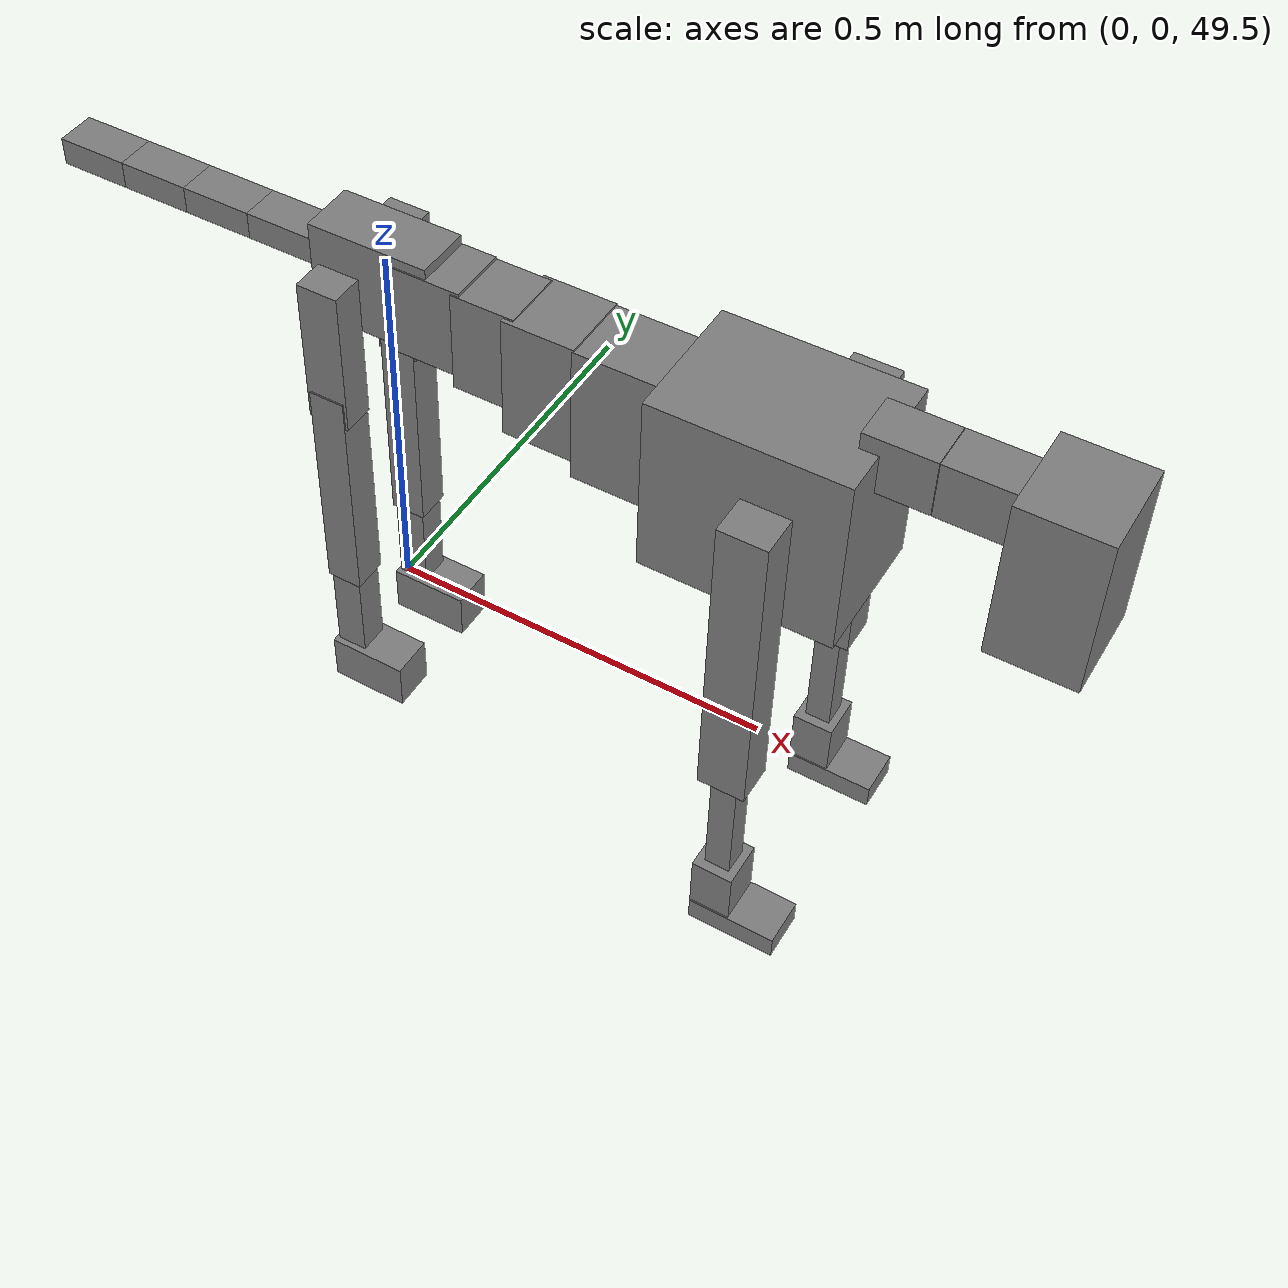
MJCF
<mujoco model="dog">

    <default>
        <joint armature="0.02" stiffness="1" damping="0.2" limited="true"/>
        <geom condim="3" friction="1 0.05 0.05" margin="0.01"/>
        <motor ctrllimited="true" ctrlrange="-1.0 1.0" forcelimited="true" gear="50"/>
    </default>

    <compiler inertiafromgeom="true" angle="radian"/>

    <option timestep="0.016" iterations="50" tolerance="1e-10" solver="Newton" jacobian="dense" cone="pyramidal"/>

    <size nconmax="20000" njmax="60000" nstack="5000000"/>
    <visual>
        <map force="0.1" zfar="30"/>
        <rgba haze="0.15 0.25 0.35 1"/>
        <quality shadowsize="2048"/>
        <global offwidth="800" offheight="800"/>
    </visual>

    <asset>
        <texture type="skybox" builtin="gradient" rgb1="0.3 0.5 0.7" rgb2="0 0 0" width="512" height="512"/>
        <texture name="texplane" type="2d" builtin="checker" rgb1=".2 .3 .4" rgb2=".1 0.15 0.2" width="512" height="512"
                 mark="cross" markrgb=".8 .8 .8"/>
        <texture name="texgeom" type="cube" builtin="flat" mark="cross" width="127" height="1278" rgb1="0.8 0.6 0.4"
                 rgb2="0.8 0.6 0.4" markrgb="1 1 1" random="0.01"/>

        <material name="matplane" reflectance="0.3" texture="texplane" texrepeat="1 1" texuniform="true"/>
        <material name="matgeom" texture="texgeom" texuniform="true" rgba="0.8 0.6 .4 1"/>
    </asset>

    <worldbody>
        <geom name="floor" pos="0 0 0" size="0 0 .25" type="plane" material="matplane" condim="3"/>

        <light directional="false" diffuse=".2 .2 .2" specular="0 0 0" pos="0 0 5" dir="0 0 -1" castshadow="false"/>
        <light mode="targetbodycom" target="torso" directional="false" diffuse=".8 .8 .8" specular="0.3 0.3 0.3"
               pos="0 0 4.0" dir="0 0 -1"/>

        <body name="root" pos="0 0 50">
            <freejoint name="root_1"/>
            <geom type="box" pos="0 0 -0.02" size="0.0774  0.0358  0.063" density="2030"/>

            <body name="spine1" pos="0.054 0 0">
                <joint name="spine1_y" axis="0 1 0" range="0 0.7" limited="true"/>
                <geom type="box" pos="0.02375 0 -0.03" size="0.04375  0.0375  0.05985" density="2030"/>

                <body name="spine2" pos="0.0612 0 0">
                    <joint name="spine2_y" axis="0 1 0" range="-0.15 0.15" limited="true"/>
                    <geom type="box" pos="0.03555  0  -0.04" size="0.04055  0.039  0.06615" density="2030"/>

                    <body name="spine3" pos="0.0730 0 0">
                        <joint name="spine3_y" axis="0 1 0" range="-0.15 0.15" limited="true"/>
                        <geom type="box" pos="0.03555  0  -0.057" size="0.04555  0.0445  0.081" density="2030"/>

                        <body name="spine4" pos="0.0780 0 0">
                            <joint name="spine4_y" axis="0 1 0" range="-0.15 0.15" limited="true"/>
                            <geom type="box" pos="0.05265  0  -0.07" size="0.05265  0.045  0.09135" density="2030"/>

                            <body name="torso" pos="0.1082 0 0">
                                <joint name="torso_y" axis="0 1 0" range="-0.15 0.15" limited="true"/>
                                <geom type="box" pos="0.11925  0  -0.085" size="0.11925  0.085  0.11745"
                                      density="2030"/>

                                <body name="neck1" pos="0.2160  0   0.0180">
                                    <joint name="neck1_y" axis="0 1 0" range="-1.2  -1" limited="true"/>
                                    <geom type="box" pos="0.0423  0  0" size="0.0423  0.03  0.036" density="2325"/>

                                    <body name="neck2" pos="0.0853  0  0">
                                        <joint name="neck2_y" axis="0 1 0" range="0.1  0" limited="true"/>
                                        <geom type="box" pos="0.0423  0  0" size="0.0423  0.03  0.036" density="2325"/>

                                        <body name="head" pos="0.0853  0  0">
                                            <joint name="head_y" axis="0 1 0" range="-0.3  -0.2" limited="true"/>
                                            <geom type="box" pos="0.0531  0  -0.055" size="0.0531  0.06  0.1044"
                                                  density="4030"/>

                                        </body>
                                    </body>
                                </body>

                                <body name="front_shoulder" pos="0.156  0   -0.0480">
                                    <joint name="front_shoulder_y" axis="0 1 0" range="-1 1.5" limited="true"/>
                                    <geom type="box" pos="0 0.13 -0.1752" size="0.0297  0.0254  0.2019" density="1158"/>
                                    <geom type="box" pos="0 -0.13 -0.1752" size="0.0297  0.0254  0.2019"
                                          density="1158"/>

                                    <body name="front_elbow" pos="0  0  -0.3504">
                                        <joint name="front_elbow_y" axis="0 1 0" range="-2 0" limited="true"/>
                                        <geom type="box" pos="0 0.13 -0.0971" size="0.0160  0.0164  0.0971"
                                              density="1081"/>
                                        <geom type="box" pos="0 -0.13 -0.0971" size="0.0160  0.0164  0.0971"
                                              density="1081"/>

                                        <body name="front_wrist" pos="0  0  -0.1941">
                                            <joint name="front_wrist_y" axis="0 1 0" range="-0.2 0" limited="true"/>
                                            <geom type="box" pos="0 0.13 -0.0368" size="0.0259  0.0288  0.0500"
                                                  density="1664"/>
                                            <geom type="box" pos="0 -0.13 -0.0368" size="0.0259  0.0288  0.0500"
                                                  density="1664"/>

                                            <body name="front_finger_end" pos="0  0  -0.0736">
                                                <joint name="front_finger_y" axis="0 1 0" range="-0.4 1"
                                                       limited="true"/>
                                                <geom type="box" pos="0.0305  0.13  -0.0004"
                                                      size="0.0558  0.0305  0.0154" density="1515"/>
                                                <geom type="box" pos="0.0305  -0.13  -0.0004"
                                                      size="0.0558  0.0305  0.0154" density="1515"/>

                                            </body>

                                        </body>
                                    </body>
                                </body>

                            </body>
                        </body>
                    </body>
                </body>
            </body>

            <body name="back_hip" pos="-0.03 0 -0.018">
                <joint name="back_hip_y" axis="0 1 0" range="-1.5 0.3" limited="true"/>
                <geom type="box" pos="0 0.07 -0.0738" size="0.0266  0.0209  0.0966" density="1154"/>
                <geom type="box" pos="0 -0.07 -0.0738" size="0.0266  0.0209  0.0966" density="1154"/>

                <body name="back_knee" pos="0  0  -0.1476">
                    <joint name="back_knee_y" axis="0 1 0" range="0 2.8" limited="true"/>
                    <geom type="box" pos="0 0.07 -0.1364" size="0.0230  0.0227  0.1519" density="1227"/>
                    <geom type="box" pos="0 -0.07 -0.1364" size="0.0230  0.0227  0.1519" density="1227"/>

                    <body name="back_ankle" pos="0  0  -0.2727">
                        <joint name="back_ankle_y" axis="0 1 0" range="-2.2 0" limited="true"/>
                        <geom type="box" pos="0 0.07 -0.0755" size="0.0197  0.0197  0.0868" density="1284"/>
                        <geom type="box" pos="0 -0.07 -0.0755" size="0.0197  0.0197  0.0868" density="1284"/>

                        <body name="back_toe_end" pos="0  0  -0.1511">
                            <joint name="back_toe_y" axis="0 1 0" range="-0.4 1" limited="true"/>
                            <geom type="box" pos="0.0278  0.07  -0.0167" size="0.0509  0.0278  0.0317" density="1515"/>
                            <geom type="box" pos="0.0278  -0.07  -0.0167" size="0.0509  0.0278  0.0317" density="1515"/>

                        </body>
                    </body>
                </body>
            </body>

            <body name="tail1" pos="-0.074 0 -0.006">
                <joint name="tail1_y" axis="0 1 0" range="-0.2 0.2" limited="true"/>
                <geom type="box" pos="-0.0536  0  0" size="0.045  0.025  0.0175" density="1587"/>

                <body name="tail2" pos="-0.09 0 0">
                    <joint name="tail2_y" axis="0 1 0" range="-0.2 0.2" limited="true"/>
                    <geom type="box" pos="-0.0536  0  0" size="0.045  0.025  0.0175" density="1587"/>

                    <body name="tail3" pos="-0.09 0 0">
                        <joint name="tail3_y" axis="0 1 0" range="-0.2 0.2" limited="true"/>
                        <geom type="box" pos="-0.0536  0  0" size="0.045  0.025  0.0175" density="1587"/>

                        <body name="tail4" pos="-0.09 0 0">
                            <joint name="tail4_y" axis="0 1 0" range="-0.2 0.2" limited="true"/>
                            <geom type="box" pos="-0.0536  0  0" size="0.045  0.025  0.0175" density="1587"/>

                        </body>
                    </body>
                </body>
            </body>
        </body>
    </worldbody>

    <actuator>
        <motor joint="spine1_y" forcerange="-150 150     "/>
        <motor joint="spine2_y" forcerange="-150 150     "/>
        <motor joint="spine3_y" forcerange="-150 150     "/>
        <motor joint="spine4_y" forcerange="-150 150     "/>
        <motor joint="torso_y" forcerange="-150 150     "/>
        <motor joint="neck1_y" forcerange="-100 100       "/>
        <motor joint="neck2_y" forcerange="-100 100       "/>
        <motor joint="head_y" forcerange="-150 150       "/>
        <motor joint="front_shoulder_y" forcerange="-147.89 121.14"/>
        <motor joint="front_elbow_y" forcerange="-114.75 104.45"/>
        <motor joint="front_wrist_y" forcerange="-140.74 89.92"/>
        <motor joint="front_finger_y" forcerange="-46.32 76.08"/>
        <motor joint="back_hip_y" forcerange="-253.92 224.09"/>
        <motor joint="back_knee_y" forcerange="-229.70 299.86"/>
        <motor joint="back_angle_y" forcerange="-101.91 113.12"/>
        <motor joint="back_toe_y" forcerange="-33.01 109.02"/>
        <motor joint="tail1_y" forcerange="-50 50     "/>
        <motor joint="tail2_y" forcerange="-50 50     "/>
        <motor joint="tail3_y" forcerange="-50 50     "/>
        <motor joint="tail4_y" forcerange="-50 50     "/>
    </actuator>
</mujoco>
